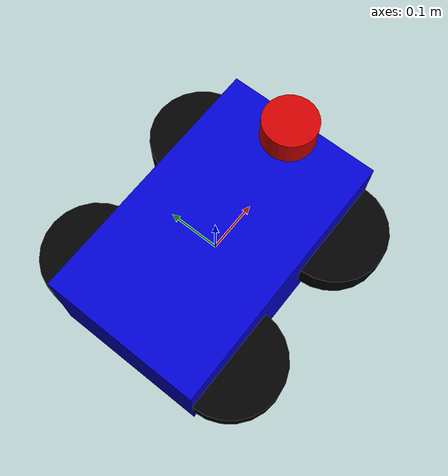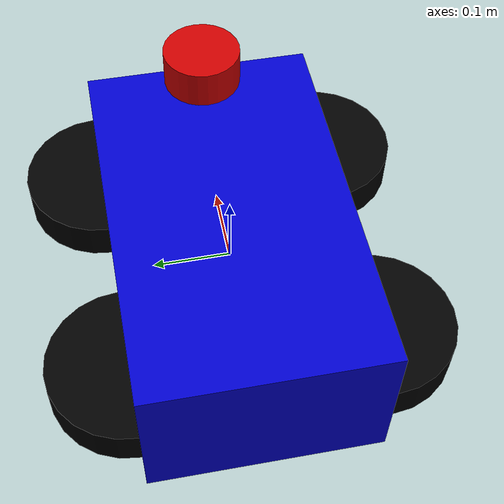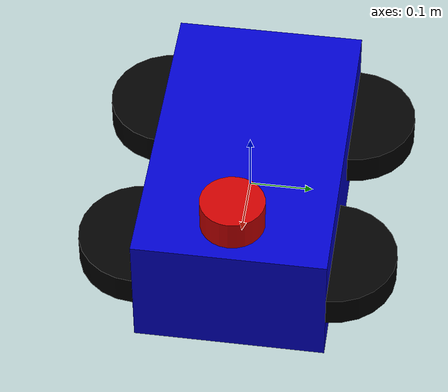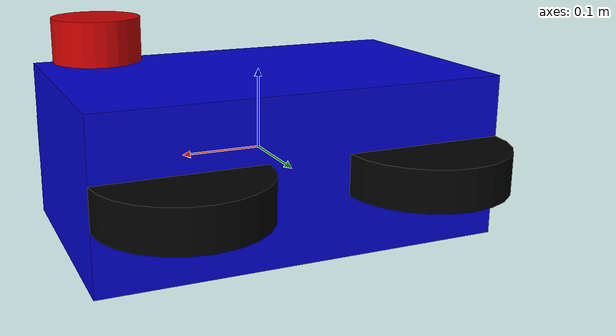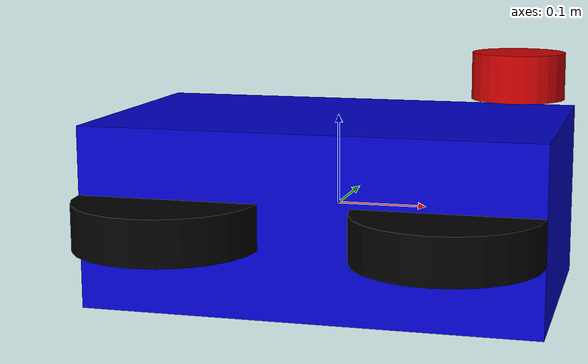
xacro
<?xml version="1.0"?>
<robot name="slam_robot" xmlns:xacro="http://www.ros.org/wiki/xacro">

  <!-- Base Link -->
  <link name="base_link">
    <visual>
      <geometry>
        <box size="0.5 0.3 0.2"/>
      </geometry>
      <material name="blue">
        <color rgba="0 0 0.8 1"/>
      </material>
    </visual>
    <collision>
      <geometry>
        <box size="0.5 0.3 0.2"/>
      </geometry>
    </collision>
    <inertial>
      <mass value="5.0"/>
      <inertia ixx="0.1" iyy="0.1" izz="0.1" ixy="0" ixz="0" iyz="0"/>
    </inertial>
  </link>

  <!-- LiDAR Link -->
  <link name="lidar_link">
    <visual>
      <geometry>
        <cylinder radius="0.05" length="0.05"/>
      </geometry>
      <material name="red">
        <color rgba="0.8 0 0 1"/>
      </material>
    </visual>
    <collision>
      <geometry>
        <cylinder radius="0.05" length="0.05"/>
      </geometry>
    </collision>
    <inertial>
      <mass value="0.1"/>
      <inertia ixx="0.001" iyy="0.001" izz="0.001" ixy="0" ixz="0" iyz="0"/>
    </inertial>
  </link>

  <!-- Joint connecting LiDAR to base -->
  <joint name="lidar_joint" type="fixed">
    <parent link="base_link"/>
    <child link="lidar_link"/>
    <origin xyz="0.2 0 0.15" rpy="0 0 0"/>
  </joint>

  <!-- Gazebo Ignition LiDAR Plugin -->
  <gazebo reference="lidar_link">
    <sensor name="lidar" type="gpu_lidar">
      <topic>/scan</topic>
      <update_rate>10</update_rate>
      <lidar>
        <scan>
          <horizontal>
            <samples>360</samples>
            <resolution>1</resolution>
            <min_angle>-3.14159</min_angle>
            <max_angle>3.14159</max_angle>
          </horizontal>
        </scan>
        <range>
          <min>0.12</min>
          <max>10.0</max>
          <resolution>0.01</resolution>
        </range>
      </lidar>
      <always_on>true</always_on>
      <visualize>true</visualize>
    </sensor>
  </gazebo>

  <!-- 4-Wheel Differential Drive Plugin -->
  <gazebo>
    <plugin filename="libignition-gazebo-diff-drive-system.so"
            name="ignition::gazebo::systems::DiffDrive">
      <left_joint>left_front_wheel_joint</left_joint>
      <right_joint>right_front_wheel_joint</right_joint>
      <left_joint>left_rear_wheel_joint</left_joint>
      <right_joint>right_rear_wheel_joint</right_joint>
      <wheel_separation>0.3</wheel_separation>
      <wheel_radius>0.1</wheel_radius>
      <topic>/cmd_vel</topic>
      <odom_topic>/odom</odom_topic>
      <frame_id>odom</frame_id>
      <child_frame_id>base_link</child_frame_id>
    </plugin>
  </gazebo>

  <!-- Front Left Wheel -->
  <link name="left_front_wheel_link">
    <visual>
      <geometry>
        <cylinder radius="0.1" length="0.05"/>
      </geometry>
      <material name="black">
        <color rgba="0 0 0 1"/>
      </material>
    </visual>
    <collision>
      <geometry>
        <cylinder radius="0.1" length="0.05"/>
      </geometry>
    </collision>
    <inertial>
      <mass value="1.0"/>
      <inertia ixx="0.01" iyy="0.01" izz="0.01" ixy="0" ixz="0" iyz="0"/>
    </inertial>
  </link>

  <joint name="left_front_wheel_joint" type="continuous">
    <parent link="base_link"/>
    <child link="left_front_wheel_link"/>
    <origin xyz="-0.15 -0.15 0" rpy="0 0 0"/>
    <axis xyz="0 1 0"/>
  </joint>

  <!-- Front Right Wheel -->
  <link name="right_front_wheel_link">
    <visual>
      <geometry>
        <cylinder radius="0.1" length="0.05"/>
      </geometry>
      <material name="black">
        <color rgba="0 0 0 1"/>
      </material>
    </visual>
    <collision>
      <geometry>
        <cylinder radius="0.1" length="0.05"/>
      </geometry>
    </collision>
    <inertial>
      <mass value="1.0"/>
      <inertia ixx="0.01" iyy="0.01" izz="0.01" ixy="0" ixz="0" iyz="0"/>
    </inertial>
  </link>

  <joint name="right_front_wheel_joint" type="continuous">
    <parent link="base_link"/>
    <child link="right_front_wheel_link"/>
    <origin xyz="-0.15 0.15 0" rpy="0 0 0"/>
    <axis xyz="0 1 0"/>
  </joint>

  <!-- Rear Left Wheel -->
  <link name="left_rear_wheel_link">
    <visual>
      <geometry>
        <cylinder radius="0.1" length="0.05"/>
      </geometry>
      <material name="black">
        <color rgba="0 0 0 1"/>
      </material>
    </visual>
    <collision>
      <geometry>
        <cylinder radius="0.1" length="0.05"/>
      </geometry>
    </collision>
    <inertial>
      <mass value="1.0"/>
      <inertia ixx="0.01" iyy="0.01" izz="0.01" ixy="0" ixz="0" iyz="0"/>
    </inertial>
  </link>

  <joint name="left_rear_wheel_joint" type="continuous">
    <parent link="base_link"/>
    <child link="left_rear_wheel_link"/>
    <origin xyz="0.15 -0.15 0" rpy="0 0 0"/>
    <axis xyz="0 1 0"/>
  </joint>

  <!-- Rear Right Wheel -->
  <link name="right_rear_wheel_link">
    <visual>
      <geometry>
        <cylinder radius="0.1" length="0.05"/>
      </geometry>
      <material name="black">
        <color rgba="0 0 0 1"/>
      </material>
    </visual>
    <collision>
      <geometry>
        <cylinder radius="0.1" length="0.05"/>
      </geometry>
    </collision>
    <inertial>
      <mass value="1.0"/>
      <inertia ixx="0.01" iyy="0.01" izz="0.01" ixy="0" ixz="0" iyz="0"/>
    </inertial>
  </link>

  <joint name="right_rear_wheel_joint" type="continuous">
    <parent link="base_link"/>
    <child link="right_rear_wheel_link"/>
    <origin xyz="0.15 0.15 0" rpy="0 0 0"/>
    <axis xyz="0 1 0"/>
  </joint>

</robot>
